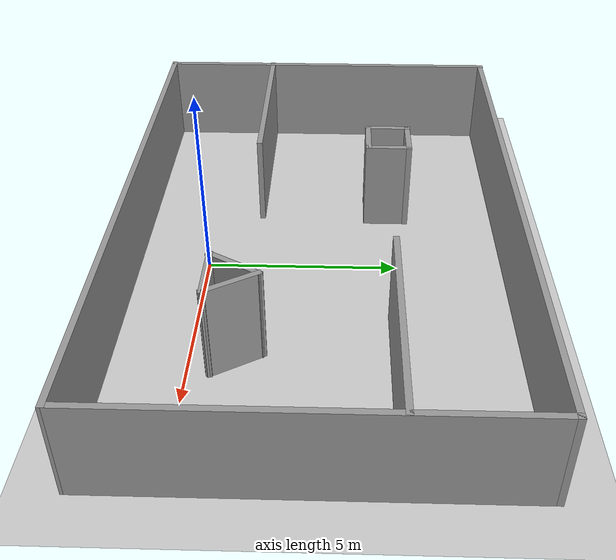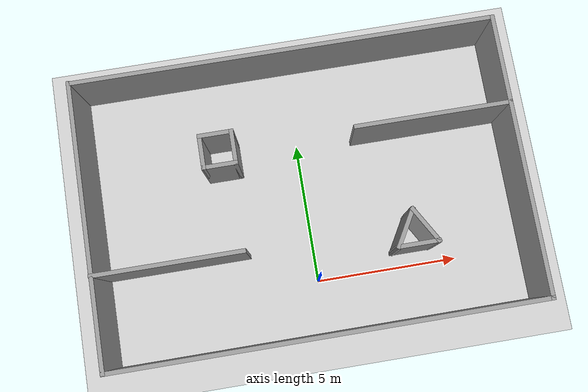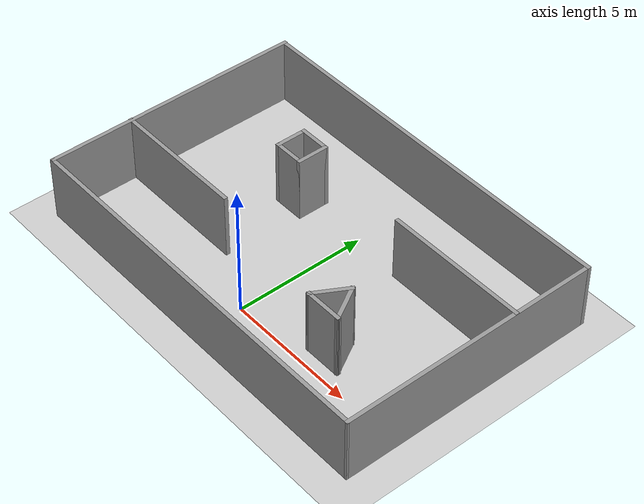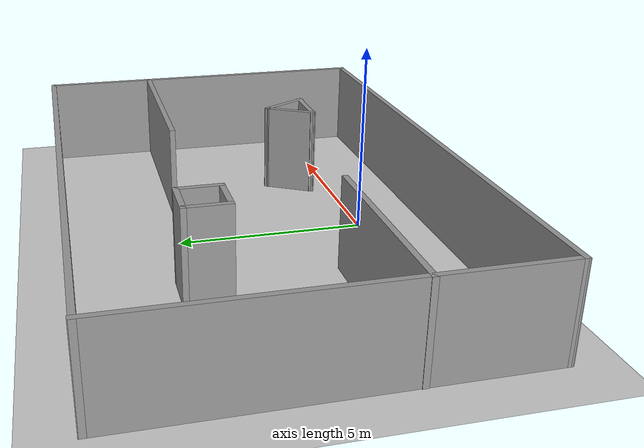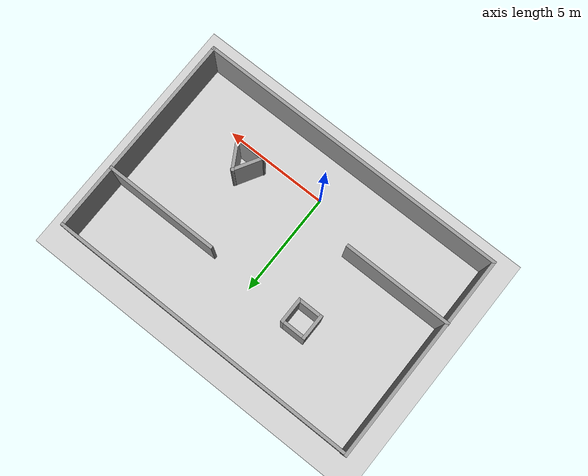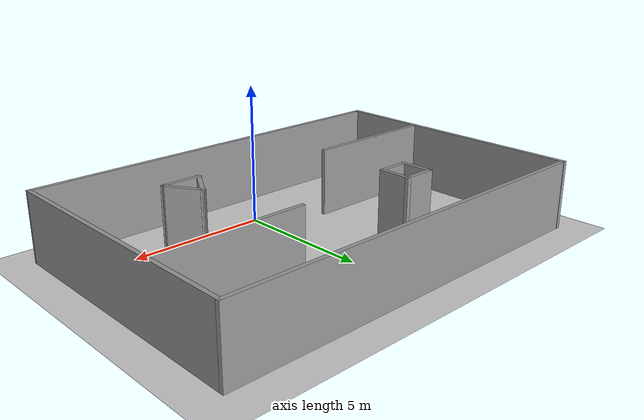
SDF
<sdf version="1.6">
 <world name="default">
  <light name="sun" type="directional">
   <pose>0 0 10 0 -0 0</pose>
   <diffuse>0.8 0.8 0.8 1</diffuse>
   <specular>0.2 0.2 0.2 1</specular>
   <attenuation>
    <range>1000</range>
    <constant>0.9</constant>
    <linear>0.01</linear>
    <quadratic>0.001</quadratic>
   </attenuation>
   <direction>-0.5 0.1 -0.9</direction>
  </light>
  <model name="ground_plane">
   <static>1</static>
   <link name="link">
    <collision name="collision">
     <geometry><plane><normal>0 0 1</normal><size>100 100</size></plane></geometry>
     <surface>
      <contact><collide_bitmask>65535</collide_bitmask></contact>
      <friction><ode><mu>100</mu><mu2>50</mu2></ode></friction>
     </surface>
    </collision>
    <visual name="visual">
     <cast_shadows>0</cast_shadows>
     <geometry><plane><normal>0 0 1</normal><size>100 100</size></plane></geometry>
     <material>
      <script><uri>file://media/materials/scripts/gazebo.material</uri><name>Gazebo/Grey</name></script>
     </material>
    </visual>
   </link>
  </model>
  <gravity>0 0 -9.8</gravity>
  <magnetic_field>6e-06 2.3e-05 -4.2e-05</magnetic_field>
  <atmosphere type="adiabatic"/>
  <physics name="default_physics" default="0" type="ode">
   <max_step_size>0.001</max_step_size>
   <real_time_factor>1</real_time_factor>
   <real_time_update_rate>1000</real_time_update_rate>
  </physics>
  <scene><ambient>0.4 0.4 0.4 1</ambient><background>0.7 0.7 0.7 1</background><shadows>1</shadows></scene>
  <spherical_coordinates>
   <surface_model>EARTH_WGS84</surface_model>
   <latitude_deg>0</latitude_deg>
   <longitude_deg>0</longitude_deg>
   <elevation>0</elevation>
   <heading_deg>0</heading_deg>
  </spherical_coordinates>
  <model name="new_world">
   <pose>-0.009432 3.00128 0 0 -0 0</pose>
   <link name="Wall_1">
    <collision name="Wall_1_Collision">
     <geometry><box><size>15.0001 0.15 2.5</size></box></geometry>
     <pose>0 0 1.25 0 -0 0</pose>
    </collision>
    <visual name="Wall_1_Visual">
     <pose>0 0 1.25 0 -0 0</pose>
     <geometry><box><size>15.0001 0.15 2.5</size></box></geometry>
     <material>
      <script><uri>file://media/materials/scripts/gazebo.material</uri><name>Gazebo/Grey</name></script>
      <ambient>1 1 1 1</ambient>
     </material>
     <meta><layer>0</layer></meta>
    </visual>
    <pose>0.007983 4.9165 0 0 -0 0</pose>
   </link>
   <link name="Wall_10">
    <collision name="Wall_10_Collision">
     <geometry><box><size>5.5 0.15 2.5</size></box></geometry>
     <pose>0 0 1.25 0 -0 0</pose>
    </collision>
    <visual name="Wall_10_Visual">
     <pose>0 0 1.25 0 -0 0</pose>
     <geometry><box><size>5.5 0.15 2.5</size></box></geometry>
     <material>
      <script><uri>file://media/materials/scripts/gazebo.material</uri><name>Gazebo/Grey</name></script>
      <ambient>1 1 1 1</ambient>
     </material>
     <meta><layer>0</layer></meta>
    </visual>
    <pose>4.74171 1.821 0 0 -0 3.14159</pose>
   </link>
   <link name="Wall_12">
    <collision name="Wall_12_Collision">
     <geometry><box><size>1.25 0.15 2.5</size></box></geometry>
     <pose>0 0 1.25 0 -0 0</pose>
    </collision>
    <visual name="Wall_12_Visual">
     <pose>0 0 1.25 0 -0 0</pose>
     <geometry><box><size>1.25 0.15 2.5</size></box></geometry>
     <material>
      <script><uri>file://media/materials/scripts/gazebo.material</uri><name>Gazebo/Grey</name></script>
      <ambient>1 1 1 1</ambient>
     </material>
     <meta><layer>0</layer></meta>
    </visual>
    <pose>-3.2465 1.803 0 0 0 -1.5708</pose>
   </link>
   <link name="Wall_13">
    <collision name="Wall_13_Collision">
     <geometry><box><size>1.25 0.15 2.5</size></box></geometry>
     <pose>0 0 1.25 0 -0 0</pose>
    </collision>
    <visual name="Wall_13_Visual">
     <pose>0 0 1.25 0 -0 0</pose>
     <geometry><box><size>1.25 0.15 2.5</size></box></geometry>
     <material>
      <script><uri>file://media/materials/scripts/gazebo.material</uri><name>Gazebo/Grey</name></script>
      <ambient>1 1 1 1</ambient>
     </material>
     <meta><layer>0</layer></meta>
    </visual>
    <pose>-2.6965 1.253 0 0 -0 0</pose>
   </link>
   <link name="Wall_14">
    <collision name="Wall_14_Collision">
     <geometry><box><size>1.25 0.15 2.5</size></box></geometry>
     <pose>0 0 1.25 0 -0 0</pose>
    </collision>
    <visual name="Wall_14_Visual">
     <pose>0 0 1.25 0 -0 0</pose>
     <geometry><box><size>1.25 0.15 2.5</size></box></geometry>
     <material>
      <script><uri>file://media/materials/scripts/gazebo.material</uri><name>Gazebo/Grey</name></script>
      <ambient>1 1 1 1</ambient>
     </material>
     <meta><layer>0</layer></meta>
    </visual>
    <pose>-2.1465 1.803 0 0 -0 1.5708</pose>
   </link>
   <link name="Wall_15">
    <collision name="Wall_15_Collision">
     <geometry><box><size>1.25 0.15 2.5</size></box></geometry>
     <pose>0 0 1.25 0 -0 0</pose>
    </collision>
    <visual name="Wall_15_Visual">
     <pose>0 0 1.25 0 -0 0</pose>
     <geometry><box><size>1.25 0.15 2.5</size></box></geometry>
     <material>
      <script><uri>file://media/materials/scripts/gazebo.material</uri><name>Gazebo/Grey</name></script>
      <ambient>1 1 1 1</ambient>
     </material>
     <meta><layer>0</layer></meta>
    </visual>
    <pose>-2.6965 2.353 0 0 -0 3.14159</pose>
   </link>
   <link name="Wall_17">
    <collision name="Wall_17_Collision">
     <geometry><box><size>1.5 0.15 2.5</size></box></geometry>
     <pose>0 0 1.25 0 -0 0</pose>
    </collision>
    <visual name="Wall_17_Visual">
     <pose>0 0 1.25 0 -0 0</pose>
     <geometry><box><size>1.5 0.15 2.5</size></box></geometry>
     <material>
      <script><uri>file://media/materials/scripts/gazebo.material</uri><name>Gazebo/Grey</name></script>
      <ambient>1 1 1 1</ambient>
     </material>
     <meta><layer>0</layer></meta>
    </visual>
    <pose>3.10074 -1.86307 0 0 0 -2.0944</pose>
   </link>
   <link name="Wall_18">
    <collision name="Wall_18_Collision">
     <geometry><box><size>1.5 0.15 2.5</size></box></geometry>
     <pose>0 0 1.25 0 -0 0</pose>
    </collision>
    <visual name="Wall_18_Visual">
     <pose>0 0 1.25 0 -0 0</pose>
     <geometry><box><size>1.5 0.15 2.5</size></box></geometry>
     <material>
      <script><uri>file://media/materials/scripts/gazebo.material</uri><name>Gazebo/Grey</name></script>
      <ambient>1 1 1 1</ambient>
     </material>
     <meta><layer>0</layer></meta>
    </visual>
    <pose>3.43825 -2.44764 0 0 -0 0</pose>
   </link>
   <link name="Wall_19">
    <collision name="Wall_19_Collision">
     <geometry><box><size>1.5 0.15 2.5</size></box></geometry>
     <pose>0 0 1.25 0 -0 0</pose>
    </collision>
    <visual name="Wall_19_Visual">
     <pose>0 0 1.25 0 -0 0</pose>
     <geometry><box><size>1.5 0.15 2.5</size></box></geometry>
     <material>
      <script><uri>file://media/materials/scripts/gazebo.material</uri><name>Gazebo/Grey</name></script>
      <ambient>1 1 1 1</ambient>
     </material>
     <meta><layer>0</layer></meta>
    </visual>
    <pose>3.77575 -1.86307 0 0 -0 2.0944</pose>
   </link>
   <link name="Wall_3">
    <collision name="Wall_3_Collision">
     <geometry><box><size>9.98271 0.15 2.5</size></box></geometry>
     <pose>0 0 1.25 0 -0 0</pose>
    </collision>
    <visual name="Wall_3_Visual">
     <pose>0 0 1.25 0 -0 0</pose>
     <geometry><box><size>9.98271 0.15 2.5</size></box></geometry>
     <material>
      <script><uri>file://media/materials/scripts/gazebo.material</uri><name>Gazebo/Grey</name></script>
      <ambient>1 1 1 1</ambient>
     </material>
     <meta><layer>0</layer></meta>
    </visual>
    <pose>7.43302 0.000142 0 0 0 -1.57079</pose>
   </link>
   <link name="Wall_4">
    <collision name="Wall_4_Collision">
     <geometry><box><size>15 0.15 2.5</size></box></geometry>
     <pose>0 0 1.25 0 -0 0</pose>
    </collision>
    <visual name="Wall_4_Visual">
     <pose>0 0 1.25 0 -0 0</pose>
     <geometry><box><size>15 0.15 2.5</size></box></geometry>
     <material>
      <script><uri>file://media/materials/scripts/gazebo.material</uri><name>Gazebo/Grey</name></script>
      <ambient>1 1 1 1</ambient>
     </material>
     <meta><layer>0</layer></meta>
    </visual>
    <pose>0.008057 -4.92496 0 0 0 -3.14041</pose>
   </link>
   <link name="Wall_5">
    <collision name="Wall_5_Collision">
     <geometry><box><size>10 0.15 2.5</size></box></geometry>
     <pose>0 0 1.25 0 -0 0</pose>
    </collision>
    <visual name="Wall_5_Visual">
     <pose>0 0 1.25 0 -0 0</pose>
     <geometry><box><size>10 0.15 2.5</size></box></geometry>
     <material>
      <script><uri>file://media/materials/scripts/gazebo.material</uri><name>Gazebo/Grey</name></script>
      <ambient>1 1 1 1</ambient>
     </material>
     <meta><layer>0</layer></meta>
    </visual>
    <pose>-7.41694 0.008789 0 0 -0 1.5708</pose>
   </link>
   <link name="Wall_8">
    <collision name="Wall_8_Collision">
     <geometry><box><size>5.25 0.15 2.5</size></box></geometry>
     <pose>0 0 1.25 0 -0 0</pose>
    </collision>
    <visual name="Wall_8_Visual">
     <pose>0 0 1.25 0 -0 0</pose>
     <geometry><box><size>5.25 0.15 2.5</size></box></geometry>
     <material>
      <script><uri>file://media/materials/scripts/gazebo.material</uri><name>Gazebo/Grey</name></script>
      <ambient>1 1 1 1</ambient>
     </material>
     <meta><layer>0</layer></meta>
    </visual>
    <pose>-4.88314 -1.74112 0 0 -0 0</pose>
   </link>
   <static>1</static>
  </model>
  <plugin filename="libcollision_map_creator.so" name="collision_map_creator"/>
 </world>
</sdf>
